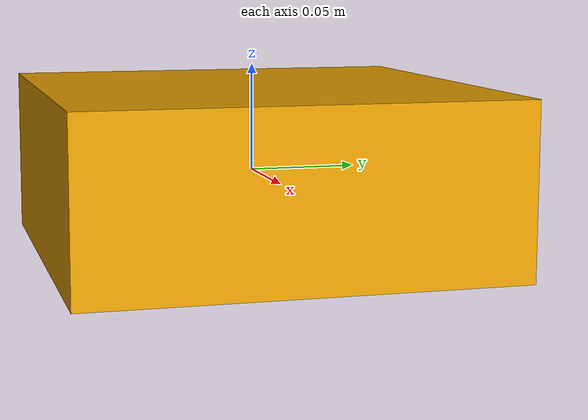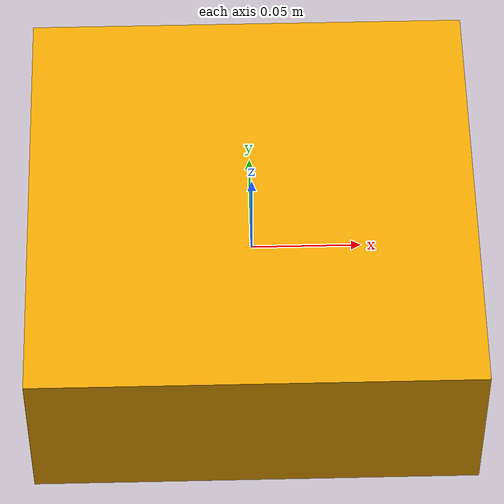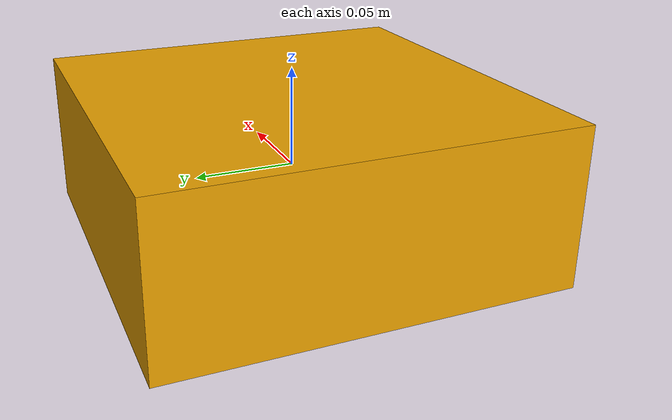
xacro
<?xml version="1.0"?>
<!-- Jonathan Burkhard, ETH Zurich, Switzerland
   01.05.2019

   TODO:  - Clean the code
          - Create the macro of simplifying creation of the repetitive part
   -->

<robot name="object_to_catch" xmlns:xacro="http://ros.org/wiki/xacro">
<!-- Incudes -->

<!-- Properties -->
  <xacro:property name="rectangle_x"     value="0.20"/>
  <xacro:property name="rectangle_y" value="0.20"/>
  <xacro:property name="rectangle_z"   value="0.08"/>
  <xacro:property name="mass"   value="0.30"/>

  <!-- ${flex_length/2.0} -->

<xacro:property name="I_xx"   value="${0.083333 * mass * (rectangle_y*rectangle_y + rectangle_z*rectangle_z)}"/>
<xacro:property name="I_yy"   value="${0.083333 * mass * (rectangle_x*rectangle_x + rectangle_z*rectangle_z)}"/>
<xacro:property name="I_zz"   value="${0.083333 * mass * (rectangle_y*rectangle_y + rectangle_x*rectangle_x)}"/>

<!-- Objects to drop -->

  <link name="link">
    <inertial>
      <origin xyz="0.0 0.0 0.0"/>
      <mass value="${mass}"/>
      <inertia
        ixx="${I_xx}" ixy="0.0" ixz="0.0"
                         iyy="${I_yy}"  iyz="0.0"
                                           izz="${I_zz}"/>
    </inertial>
    <visual>
      <origin xyz="0 0 0" rpy="0 0 0" />
      <geometry>
        <box size="${rectangle_x} ${rectangle_y} ${rectangle_z}"/>
      </geometry>
    </visual>
    <collision>
      <surface>
        <contact>
          <poissons_ratio>0.347</poissons_ratio>
          <elastic_modulus>8.8e+09</elastic_modulus>
          <ode>
            <kp>100000</kp>
            <kd>1</kd>
            <max_vel>0.0</max_vel>
            <min_depth>0.003</min_depth>
          </ode>
        </contact>
        <friction>
          <ode>
            <mu>0.1</mu>
            <mu2>0.1</mu2>
            <fdir1>0 0 0</fdir1>
            <slip1>1</slip1>
            <slip2>1</slip2>
          </ode>
        </friction>
      </surface>
      <origin xyz="0.0 0.0 0.0" rpy="0 0 0" />
      <geometry>
        <box size="${rectangle_x} ${rectangle_y} ${rectangle_z}"/>
      </geometry>
    </collision>
  </link>

</robot>
